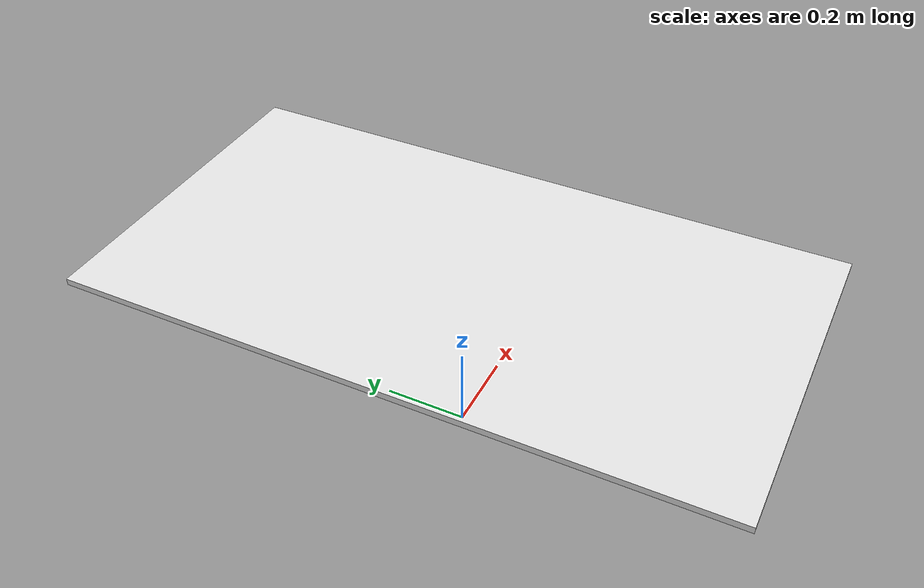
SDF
<?xml version="1.0"?>
<sdf version="1.7">

  <model name="table_top">
  <link name="table_top_link">
    <inertial>
      <mass>18.70</mass>
      <pose>0.0 0.0 0.445 0 0 0</pose>
      <inertia>
          <ixx>0.619</ixx>
          <ixy>0</ixy>
          <ixz>0</ixz>
          <iyy>0.374</iyy>
          <iyz>0</iyz>
          <izz>0.99</izz>
      </inertia>
    </inertial>
    <visual name="bottom">
      <pose>0.0 0.0 0.445 0 0 0</pose>
      <geometry>
        <box>
          <size>0.8 1.5 0.015</size>
        </box>
      </geometry>
      <material>
        <diffuse>0.9 0.9 0.9 1.0</diffuse>
      </material>
    </visual>
    <collision name="bottom">
      <pose>0.0 0.0 0.445 0 0 0</pose>
      <geometry>
        <box>
          <size>0.8 1.5 0.015</size>
        </box>
      </geometry>
      <drake:proximity_properties>
          <drake:point_contact_stiffness>
            20000
          </drake:point_contact_stiffness>
          <drake:hunt_crossley_dissipation>
            0.1
          </drake:hunt_crossley_dissipation>
        </drake:proximity_properties>
    </collision>
  </link>
  <frame name="table_top_center">
    <pose relative_to="table_top_link">0 0 0.47 0 0 0</pose>
  </frame>
</model>

</sdf>
